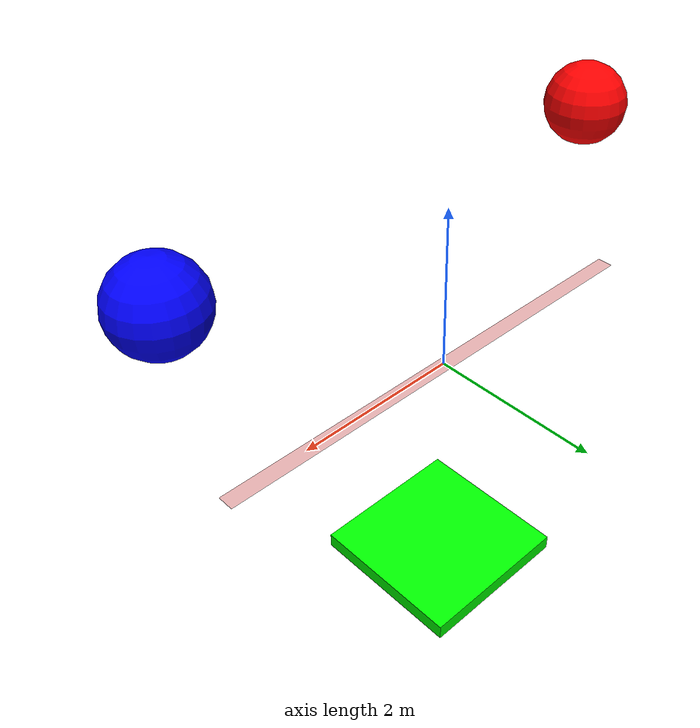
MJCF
<mujoco>
  <option gravity="0 0 -9.81"/>
  <worldbody>
    <body name="slope" pos="0 0 0">
      <geom type="plane" size="3 0.1 5" rgba="0.7 0 0 1" friction="0.2 0.2 0.2"/>
    </body>
    <body name="ground" pos="0 0 -10">
      <geom type="plane" size="30 30 0.1" rgba="0.7 0.7 0.7 1"/>
    </body>
    <body name="rolling_sphere" pos="-3 -0.6 2">
      <geom type="sphere" size="0.5" density="1" rgba="1 0 0 1"/>
      <joint type="free"/>
    </body>
    <body name="sliding_sphere" pos="3 -0.6 2">
      <geom type="sphere" size="0.5" density="1" rgba="0 0 1 1"/>
      <joint type="free"/>
    </body>
    <body name="goal_line" pos="0 0 -3">
      <geom type="box" size="1 1 0.1" rgba="0 1 0 1"/>
    </body>
  </worldbody>
</mujoco>
